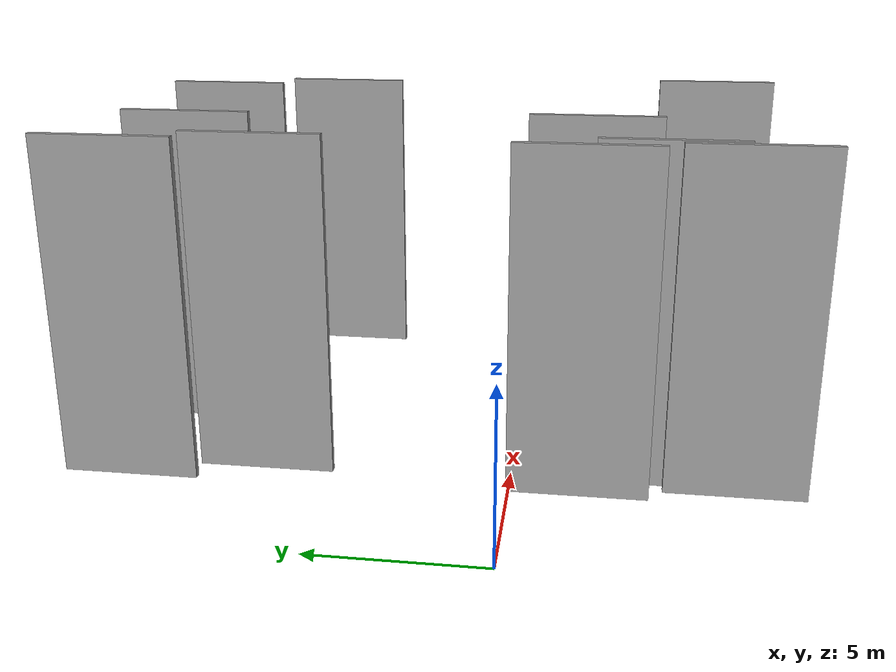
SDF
<sdf version="1.6">
 <world name="default">
  <scene>
   <sky><clouds><speed>12</speed></clouds></sky>
   <ambient>0.4 0.4 0.4 1</ambient>
   <background>0.7 0.7 0.7 1</background>
   <shadows>1</shadows>
  </scene>
  <gravity>0 0 -9.8066</gravity>
  <magnetic_field>6e-06 2.3e-05 -4.2e-05</magnetic_field>
  <physics default="0" name="default_physics" type="ode">
   <ode>
    <solver>
     <type>quick</type>
     <iters>10</iters>
     <sor>1.0</sor>
     <use_dynamic_moi_rescaling>0</use_dynamic_moi_rescaling>
    </solver>
    <constraints>
     <cfm>0</cfm>
     <erp>0.2</erp>
     <contact_max_correcting_vel>100</contact_max_correcting_vel>
     <contact_surface_layer>0.001</contact_surface_layer>
    </constraints>
   </ode>
   <max_step_size>0.004</max_step_size>
   <real_time_factor>1</real_time_factor>
   <real_time_update_rate>250</real_time_update_rate>
  </physics>
  <light name="sun" type="directional">
   <pose>0 0 10 0 0 0</pose>
   <diffuse>0.8 0.8 0.8 1</diffuse>
   <specular>0.2 0.2 0.2 1</specular>
   <attenuation>
    <range>1000</range>
    <constant>0.9</constant>
    <linear>0.01</linear>
    <quadratic>0.001</quadratic>
   </attenuation>
   <direction>-0.5 0.1 -0.9</direction>
  </light>
  <model name="grey_wall_1">
   <static>1</static>
   <pose>4.5579 -6.3355 0.0 0.000000 0.000000 1.570796</pose>
   <link name="link">
    <pose>0 0 5.00 0 0 0</pose>
    <collision name="collision"><geometry><box><size>4.00 0.2 10.00</size></box></geometry></collision>
    <visual name="visual">
     <cast_shadows>0</cast_shadows>
     <geometry><box><size>4.00 0.2 10.00</size></box></geometry>
     <material>
      <script>
       <uri>model://grey_wall/materials/scripts</uri>
       <uri>model://grey_wall/materials/textures</uri>
       <name>vrc/grey_wall</name>
      </script>
     </material>
    </visual>
   </link>
  </model>
  <model name="grey_wall_2">
   <static>1</static>
   <pose>4.9412 -4.1222 0.0 0.000000 0.000000 1.570796</pose>
   <link name="link">
    <pose>0 0 5.00 0 0 0</pose>
    <collision name="collision"><geometry><box><size>4.00 0.2 10.00</size></box></geometry></collision>
    <visual name="visual">
     <cast_shadows>0</cast_shadows>
     <geometry><box><size>4.00 0.2 10.00</size></box></geometry>
     <material>
      <script>
       <uri>model://grey_wall/materials/scripts</uri>
       <uri>model://grey_wall/materials/textures</uri>
       <name>vrc/grey_wall</name>
      </script>
     </material>
    </visual>
   </link>
  </model>
  <model name="grey_wall_3">
   <static>1</static>
   <pose>7.8502 10.2902 0.0 0.000000 0.000000 1.570796</pose>
   <link name="link">
    <pose>0 0 5.00 0 0 0</pose>
    <collision name="collision"><geometry><box><size>4.00 0.2 10.00</size></box></geometry></collision>
    <visual name="visual">
     <cast_shadows>0</cast_shadows>
     <geometry><box><size>4.00 0.2 10.00</size></box></geometry>
     <material>
      <script>
       <uri>model://grey_wall/materials/scripts</uri>
       <uri>model://grey_wall/materials/textures</uri>
       <name>vrc/grey_wall</name>
      </script>
     </material>
    </visual>
   </link>
  </model>
  <model name="grey_wall_4">
   <static>1</static>
   <pose>15.4364 6.9611 0.0 0.000000 0.000000 1.570796</pose>
   <link name="link">
    <pose>0 0 5.00 0 0 0</pose>
    <collision name="collision"><geometry><box><size>4.00 0.2 10.00</size></box></geometry></collision>
    <visual name="visual">
     <cast_shadows>0</cast_shadows>
     <geometry><box><size>4.00 0.2 10.00</size></box></geometry>
     <material>
      <script>
       <uri>model://grey_wall/materials/scripts</uri>
       <uri>model://grey_wall/materials/textures</uri>
       <name>vrc/grey_wall</name>
      </script>
     </material>
    </visual>
   </link>
  </model>
  <model name="grey_wall_5">
   <static>1</static>
   <pose>4.0426 -1.9249 0.0 0.000000 0.000000 1.570796</pose>
   <link name="link">
    <pose>0 0 5.00 0 0 0</pose>
    <collision name="collision"><geometry><box><size>4.00 0.2 10.00</size></box></geometry></collision>
    <visual name="visual">
     <cast_shadows>0</cast_shadows>
     <geometry><box><size>4.00 0.2 10.00</size></box></geometry>
     <material>
      <script>
       <uri>model://grey_wall/materials/scripts</uri>
       <uri>model://grey_wall/materials/textures</uri>
       <name>vrc/grey_wall</name>
      </script>
     </material>
    </visual>
   </link>
  </model>
  <model name="grey_wall_6">
   <static>1</static>
   <pose>8.5541 -2.0897 0.0 0.000000 0.000000 1.570796</pose>
   <link name="link">
    <pose>0 0 5.00 0 0 0</pose>
    <collision name="collision"><geometry><box><size>4.00 0.2 10.00</size></box></geometry></collision>
    <visual name="visual">
     <cast_shadows>0</cast_shadows>
     <geometry><box><size>4.00 0.2 10.00</size></box></geometry>
     <material>
      <script>
       <uri>model://grey_wall/materials/scripts</uri>
       <uri>model://grey_wall/materials/textures</uri>
       <name>vrc/grey_wall</name>
      </script>
     </material>
    </visual>
   </link>
  </model>
  <model name="grey_wall_7">
   <static>1</static>
   <pose>16.6354 -6.2905 0.0 0.000000 0.000000 1.570796</pose>
   <link name="link">
    <pose>0 0 5.00 0 0 0</pose>
    <collision name="collision"><geometry><box><size>4.00 0.2 10.00</size></box></geometry></collision>
    <visual name="visual">
     <cast_shadows>0</cast_shadows>
     <geometry><box><size>4.00 0.2 10.00</size></box></geometry>
     <material>
      <script>
       <uri>model://grey_wall/materials/scripts</uri>
       <uri>model://grey_wall/materials/textures</uri>
       <name>vrc/grey_wall</name>
      </script>
     </material>
    </visual>
   </link>
  </model>
  <model name="grey_wall_8">
   <static>1</static>
   <pose>4.5201 7.2007 0.0 0.000000 0.000000 1.570796</pose>
   <link name="link">
    <pose>0 0 5.00 0 0 0</pose>
    <collision name="collision"><geometry><box><size>4.00 0.2 10.00</size></box></geometry></collision>
    <visual name="visual">
     <cast_shadows>0</cast_shadows>
     <geometry><box><size>4.00 0.2 10.00</size></box></geometry>
     <material>
      <script>
       <uri>model://grey_wall/materials/scripts</uri>
       <uri>model://grey_wall/materials/textures</uri>
       <name>vrc/grey_wall</name>
      </script>
     </material>
    </visual>
   </link>
  </model>
  <model name="grey_wall_9">
   <static>1</static>
   <pose>3.6274 11.0390 0.0 0.000000 0.000000 1.570796</pose>
   <link name="link">
    <pose>0 0 5.00 0 0 0</pose>
    <collision name="collision"><geometry><box><size>4.00 0.2 10.00</size></box></geometry></collision>
    <visual name="visual">
     <cast_shadows>0</cast_shadows>
     <geometry><box><size>4.00 0.2 10.00</size></box></geometry>
     <material>
      <script>
       <uri>model://grey_wall/materials/scripts</uri>
       <uri>model://grey_wall/materials/textures</uri>
       <name>vrc/grey_wall</name>
      </script>
     </material>
    </visual>
   </link>
  </model>
  <model name="grey_wall_10">
   <static>1</static>
   <pose>14.2230 11.0543 0.0 0.000000 0.000000 1.570796</pose>
   <link name="link">
    <pose>0 0 5.00 0 0 0</pose>
    <collision name="collision"><geometry><box><size>4.00 0.2 10.00</size></box></geometry></collision>
    <visual name="visual">
     <cast_shadows>0</cast_shadows>
     <geometry><box><size>4.00 0.2 10.00</size></box></geometry>
     <material>
      <script>
       <uri>model://grey_wall/materials/scripts</uri>
       <uri>model://grey_wall/materials/textures</uri>
       <name>vrc/grey_wall</name>
      </script>
     </material>
    </visual>
   </link>
  </model>
 </world>
</sdf>
